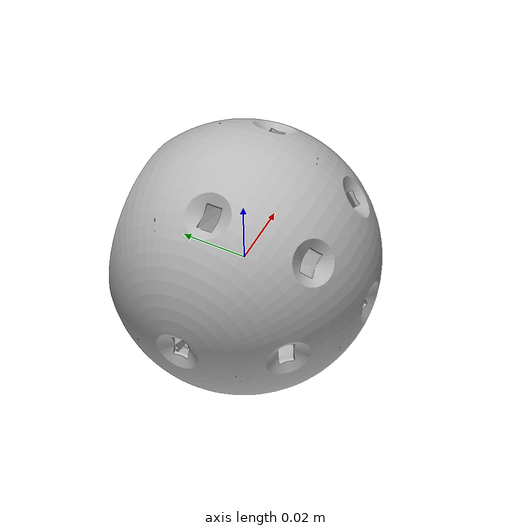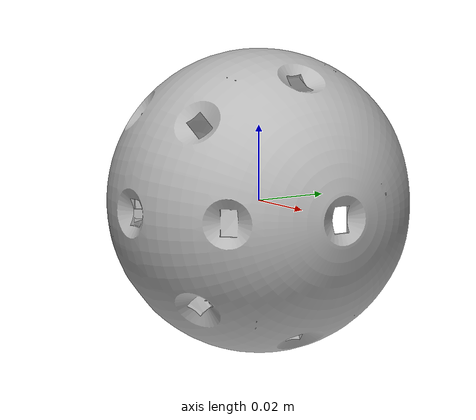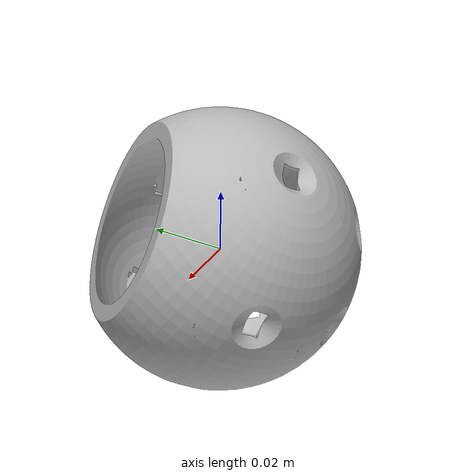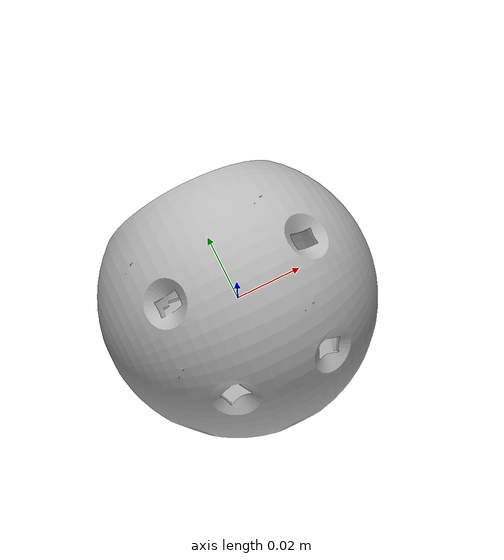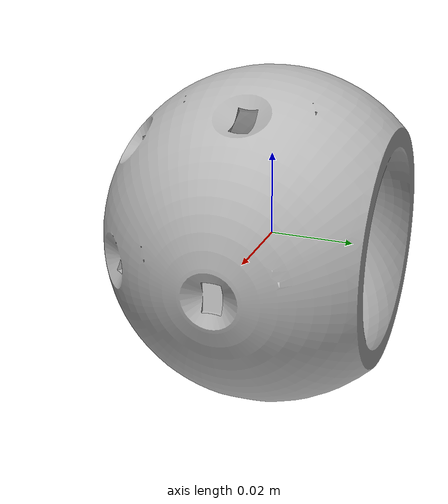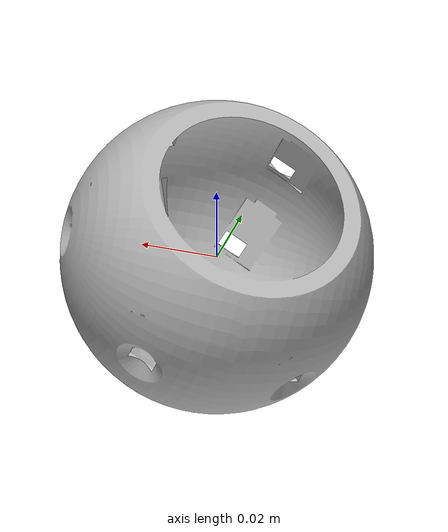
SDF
<?xml version="1.0" ?>
<sdf version="1.6">
	<model name="sphereTracker">
		<link name="sphereTracker">
			<pose frame="">0.0 0.0285 0.0 0.0 -0.0 0.0</pose>
			<inertial>
				<pose frame="">0.0 0.0 0.0 0 0 0</pose>
				<mass>0.6829233847328451</mass>
				<inertia>
					<ixx>0.0006445959763526572</ixx>
					<ixy>1.0087814597110085e-06</ixy>
					<ixz>3.284733304377515e-07</ixz>
					<iyy>0.0007419662673317614</iyy>
					<iyz>7.336007135392171e-08</iyz>
					<izz>0.0006443504795838141</izz>
				</inertia>
			</inertial>
			<collision name="sphereTracker_collision">
				<geometry>
					<mesh>
						<uri>model://sphereTracker/meshes/CAD/sphereTracker.stl</uri>
						<scale>0.001 0.001 0.001</scale>
					</mesh>
				</geometry>
			</collision>
			<visual name="sphereTracker_visual">
				<geometry>
					<mesh>
						<uri>model://sphereTracker/meshes/CAD/sphereTracker.stl</uri>
						<scale>0.001 0.001 0.001</scale>
					</mesh>
				</geometry>
			</visual>
		</link>
		<plugin filename="libmyomuscle_plugin.so" name="myomuscle_plugin"/>
	</model>
</sdf>
